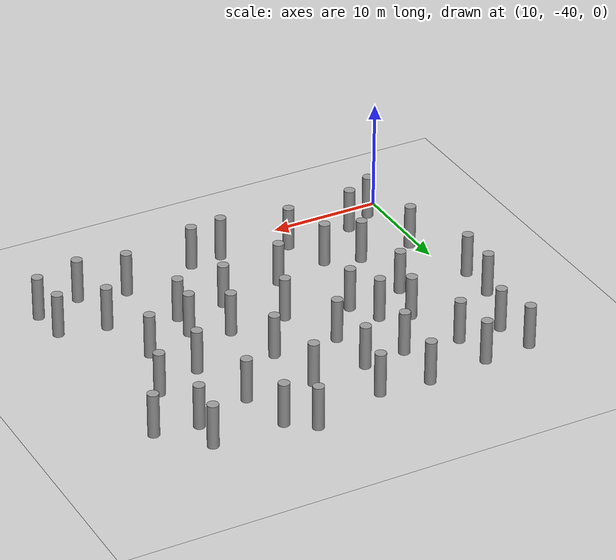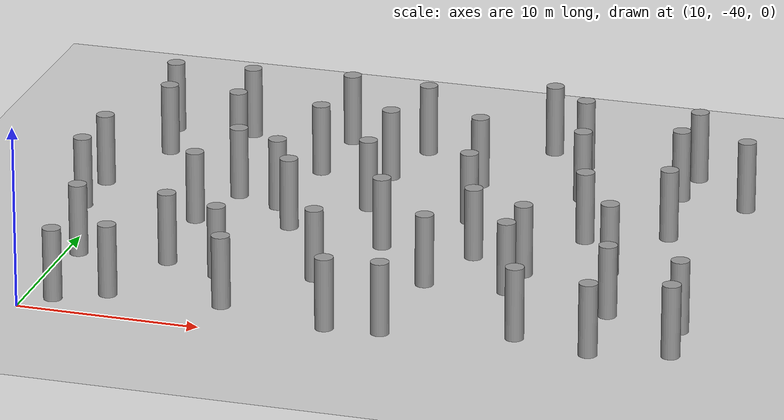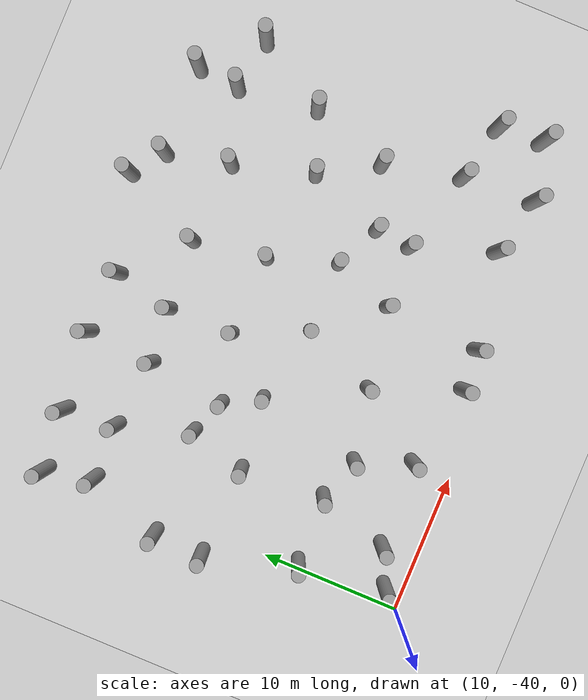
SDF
<sdf version="1.5">
 <world name="circle">
  <model name="ground">
   <static>1</static>
   <link name="link">
    <collision name="collision">
     <geometry><plane><normal>0 0 1</normal><size>100 100</size></plane></geometry>
     <surface><friction><ode><mu>100</mu><mu2>50</mu2></ode></friction></surface>
    </collision>
    <visual name="visual">
     <cast_shadows>0</cast_shadows>
     <geometry><plane><normal>0 0 1</normal><size>100 100</size></plane></geometry>
     <material>
      <script><uri>file://media/materials/scripts/gazebo.material</uri><name>Gazebo/Grey</name></script>
     </material>
    </visual>
    <velocity_decay><linear>0</linear><angular>0</angular></velocity_decay>
   </link>
  </model>
  <model name="unit_cylinder_0">
   <pose>11.4704873806 -38.4705015737 2 3e-06 4e-06 -0</pose>
   <static>1</static>
   <self_collide>1</self_collide>
   <link name="link">
    <inertial>
     <mass>1</mass>
     <inertia><ixx>0.145833</ixx><ixy>0</ixy><ixz>0</ixz><iyy>0.145833</iyy><iyz>0</iyz><izz>0.125</izz></inertia>
    </inertial>
    <collision name="collision">
     <geometry><cylinder><radius>0.5</radius><length>4</length></cylinder></geometry>
    </collision>
    <visual name="visual">
     <geometry><cylinder><radius>0.5</radius><length>4</length></cylinder></geometry>
     <material>
      <script><name>Gazebo/Grey</name><uri>file://media/materials/scripts/gazebo.material</uri></script>
     </material>
    </visual>
    <collision name="cyl_collision">
     <geometry><cylinder><radius>0.5</radius><length>4</length></cylinder></geometry>
    </collision>
    <sensor name="my_contact" type="contact">
     <contact><collision>cyl_collision</collision></contact>
     <update_rate>5</update_rate>
    </sensor>
   </link>
  </model>
  <model name="unit_cylinder_1">
   <pose>10.7220706982 -32.2368732227 2 3e-06 4e-06 -0</pose>
   <static>1</static>
   <self_collide>1</self_collide>
   <link name="link">
    <inertial>
     <mass>1</mass>
     <inertia><ixx>0.145833</ixx><ixy>0</ixy><ixz>0</ixz><iyy>0.145833</iyy><iyz>0</iyz><izz>0.125</izz></inertia>
    </inertial>
    <collision name="collision">
     <geometry><cylinder><radius>0.5</radius><length>4</length></cylinder></geometry>
    </collision>
    <visual name="visual">
     <geometry><cylinder><radius>0.5</radius><length>4</length></cylinder></geometry>
     <material>
      <script><name>Gazebo/Grey</name><uri>file://media/materials/scripts/gazebo.material</uri></script>
     </material>
    </visual>
    <collision name="cyl_collision">
     <geometry><cylinder><radius>0.5</radius><length>4</length></cylinder></geometry>
    </collision>
    <sensor name="my_contact" type="contact">
     <contact><collision>cyl_collision</collision></contact>
     <update_rate>5</update_rate>
    </sensor>
   </link>
  </model>
  <model name="unit_cylinder_2">
   <pose>8.72058208879 -25.7659753687 2 3e-06 4e-06 -0</pose>
   <static>1</static>
   <self_collide>1</self_collide>
   <link name="link">
    <inertial>
     <mass>1</mass>
     <inertia><ixx>0.145833</ixx><ixy>0</ixy><ixz>0</ixz><iyy>0.145833</iyy><iyz>0</iyz><izz>0.125</izz></inertia>
    </inertial>
    <collision name="collision">
     <geometry><cylinder><radius>0.5</radius><length>4</length></cylinder></geometry>
    </collision>
    <visual name="visual">
     <geometry><cylinder><radius>0.5</radius><length>4</length></cylinder></geometry>
     <material>
      <script><name>Gazebo/Grey</name><uri>file://media/materials/scripts/gazebo.material</uri></script>
     </material>
    </visual>
    <collision name="cyl_collision">
     <geometry><cylinder><radius>0.5</radius><length>4</length></cylinder></geometry>
    </collision>
    <sensor name="my_contact" type="contact">
     <contact><collision>cyl_collision</collision></contact>
     <update_rate>5</update_rate>
    </sensor>
   </link>
  </model>
  <model name="unit_cylinder_3">
   <pose>8.7979311131 -22.1893180289 2 3e-06 4e-06 -0</pose>
   <static>1</static>
   <self_collide>1</self_collide>
   <link name="link">
    <inertial>
     <mass>1</mass>
     <inertia><ixx>0.145833</ixx><ixy>0</ixy><ixz>0</ixz><iyy>0.145833</iyy><iyz>0</iyz><izz>0.125</izz></inertia>
    </inertial>
    <collision name="collision">
     <geometry><cylinder><radius>0.5</radius><length>4</length></cylinder></geometry>
    </collision>
    <visual name="visual">
     <geometry><cylinder><radius>0.5</radius><length>4</length></cylinder></geometry>
     <material>
      <script><name>Gazebo/Grey</name><uri>file://media/materials/scripts/gazebo.material</uri></script>
     </material>
    </visual>
    <collision name="cyl_collision">
     <geometry><cylinder><radius>0.5</radius><length>4</length></cylinder></geometry>
    </collision>
    <sensor name="my_contact" type="contact">
     <contact><collision>cyl_collision</collision></contact>
     <update_rate>5</update_rate>
    </sensor>
   </link>
  </model>
  <model name="unit_cylinder_4">
   <pose>10.7291669379 -16.8295722674 2 3e-06 4e-06 -0</pose>
   <static>1</static>
   <self_collide>1</self_collide>
   <link name="link">
    <inertial>
     <mass>1</mass>
     <inertia><ixx>0.145833</ixx><ixy>0</ixy><ixz>0</ixz><iyy>0.145833</iyy><iyz>0</iyz><izz>0.125</izz></inertia>
    </inertial>
    <collision name="collision">
     <geometry><cylinder><radius>0.5</radius><length>4</length></cylinder></geometry>
    </collision>
    <visual name="visual">
     <geometry><cylinder><radius>0.5</radius><length>4</length></cylinder></geometry>
     <material>
      <script><name>Gazebo/Grey</name><uri>file://media/materials/scripts/gazebo.material</uri></script>
     </material>
    </visual>
    <collision name="cyl_collision">
     <geometry><cylinder><radius>0.5</radius><length>4</length></cylinder></geometry>
    </collision>
    <sensor name="my_contact" type="contact">
     <contact><collision>cyl_collision</collision></contact>
     <update_rate>5</update_rate>
    </sensor>
   </link>
  </model>
  <model name="unit_cylinder_5">
   <pose>9.95934190549 -13.4133714786 2 3e-06 4e-06 -0</pose>
   <static>1</static>
   <self_collide>1</self_collide>
   <link name="link">
    <inertial>
     <mass>1</mass>
     <inertia><ixx>0.145833</ixx><ixy>0</ixy><ixz>0</ixz><iyy>0.145833</iyy><iyz>0</iyz><izz>0.125</izz></inertia>
    </inertial>
    <collision name="collision">
     <geometry><cylinder><radius>0.5</radius><length>4</length></cylinder></geometry>
    </collision>
    <visual name="visual">
     <geometry><cylinder><radius>0.5</radius><length>4</length></cylinder></geometry>
     <material>
      <script><name>Gazebo/Grey</name><uri>file://media/materials/scripts/gazebo.material</uri></script>
     </material>
    </visual>
    <collision name="cyl_collision">
     <geometry><cylinder><radius>0.5</radius><length>4</length></cylinder></geometry>
    </collision>
    <sensor name="my_contact" type="contact">
     <contact><collision>cyl_collision</collision></contact>
     <update_rate>5</update_rate>
    </sensor>
   </link>
  </model>
  <model name="unit_cylinder_15">
   <pose>14.0691763741 -37.1683287253 2 3e-06 4e-06 -0</pose>
   <static>1</static>
   <self_collide>1</self_collide>
   <link name="link">
    <inertial>
     <mass>1</mass>
     <inertia><ixx>0.145833</ixx><ixy>0</ixy><ixz>0</ixz><iyy>0.145833</iyy><iyz>0</iyz><izz>0.125</izz></inertia>
    </inertial>
    <collision name="collision">
     <geometry><cylinder><radius>0.5</radius><length>4</length></cylinder></geometry>
    </collision>
    <visual name="visual">
     <geometry><cylinder><radius>0.5</radius><length>4</length></cylinder></geometry>
     <material>
      <script><name>Gazebo/Grey</name><uri>file://media/materials/scripts/gazebo.material</uri></script>
     </material>
    </visual>
    <collision name="cyl_collision">
     <geometry><cylinder><radius>0.5</radius><length>4</length></cylinder></geometry>
    </collision>
    <sensor name="my_contact" type="contact">
     <contact><collision>cyl_collision</collision></contact>
     <update_rate>5</update_rate>
    </sensor>
   </link>
  </model>
  <model name="unit_cylinder_16">
   <pose>15.6718557421 -32.0796657784 2 3e-06 4e-06 -0</pose>
   <static>1</static>
   <self_collide>1</self_collide>
   <link name="link">
    <inertial>
     <mass>1</mass>
     <inertia><ixx>0.145833</ixx><ixy>0</ixy><ixz>0</ixz><iyy>0.145833</iyy><iyz>0</iyz><izz>0.125</izz></inertia>
    </inertial>
    <collision name="collision">
     <geometry><cylinder><radius>0.5</radius><length>4</length></cylinder></geometry>
    </collision>
    <visual name="visual">
     <geometry><cylinder><radius>0.5</radius><length>4</length></cylinder></geometry>
     <material>
      <script><name>Gazebo/Grey</name><uri>file://media/materials/scripts/gazebo.material</uri></script>
     </material>
    </visual>
    <collision name="cyl_collision">
     <geometry><cylinder><radius>0.5</radius><length>4</length></cylinder></geometry>
    </collision>
    <sensor name="my_contact" type="contact">
     <contact><collision>cyl_collision</collision></contact>
     <update_rate>5</update_rate>
    </sensor>
   </link>
  </model>
  <model name="unit_cylinder_17">
   <pose>15.2381734508 -26.0447782265 2 3e-06 4e-06 -0</pose>
   <static>1</static>
   <self_collide>1</self_collide>
   <link name="link">
    <inertial>
     <mass>1</mass>
     <inertia><ixx>0.145833</ixx><ixy>0</ixy><ixz>0</ixz><iyy>0.145833</iyy><iyz>0</iyz><izz>0.125</izz></inertia>
    </inertial>
    <collision name="collision">
     <geometry><cylinder><radius>0.5</radius><length>4</length></cylinder></geometry>
    </collision>
    <visual name="visual">
     <geometry><cylinder><radius>0.5</radius><length>4</length></cylinder></geometry>
     <material>
      <script><name>Gazebo/Grey</name><uri>file://media/materials/scripts/gazebo.material</uri></script>
     </material>
    </visual>
    <collision name="cyl_collision">
     <geometry><cylinder><radius>0.5</radius><length>4</length></cylinder></geometry>
    </collision>
    <sensor name="my_contact" type="contact">
     <contact><collision>cyl_collision</collision></contact>
     <update_rate>5</update_rate>
    </sensor>
   </link>
  </model>
  <model name="unit_cylinder_18">
   <pose>16.4323542205 -21.9812832431 2 3e-06 4e-06 -0</pose>
   <static>1</static>
   <self_collide>1</self_collide>
   <link name="link">
    <inertial>
     <mass>1</mass>
     <inertia><ixx>0.145833</ixx><ixy>0</ixy><ixz>0</ixz><iyy>0.145833</iyy><iyz>0</iyz><izz>0.125</izz></inertia>
    </inertial>
    <collision name="collision">
     <geometry><cylinder><radius>0.5</radius><length>4</length></cylinder></geometry>
    </collision>
    <visual name="visual">
     <geometry><cylinder><radius>0.5</radius><length>4</length></cylinder></geometry>
     <material>
      <script><name>Gazebo/Grey</name><uri>file://media/materials/scripts/gazebo.material</uri></script>
     </material>
    </visual>
    <collision name="cyl_collision">
     <geometry><cylinder><radius>0.5</radius><length>4</length></cylinder></geometry>
    </collision>
    <sensor name="my_contact" type="contact">
     <contact><collision>cyl_collision</collision></contact>
     <update_rate>5</update_rate>
    </sensor>
   </link>
  </model>
  <model name="unit_cylinder_19">
   <pose>14.7287866924 -16.8152338444 2 3e-06 4e-06 -0</pose>
   <static>1</static>
   <self_collide>1</self_collide>
   <link name="link">
    <inertial>
     <mass>1</mass>
     <inertia><ixx>0.145833</ixx><ixy>0</ixy><ixz>0</ixz><iyy>0.145833</iyy><iyz>0</iyz><izz>0.125</izz></inertia>
    </inertial>
    <collision name="collision">
     <geometry><cylinder><radius>0.5</radius><length>4</length></cylinder></geometry>
    </collision>
    <visual name="visual">
     <geometry><cylinder><radius>0.5</radius><length>4</length></cylinder></geometry>
     <material>
      <script><name>Gazebo/Grey</name><uri>file://media/materials/scripts/gazebo.material</uri></script>
     </material>
    </visual>
    <collision name="cyl_collision">
     <geometry><cylinder><radius>0.5</radius><length>4</length></cylinder></geometry>
    </collision>
    <sensor name="my_contact" type="contact">
     <contact><collision>cyl_collision</collision></contact>
     <update_rate>5</update_rate>
    </sensor>
   </link>
  </model>
  <model name="unit_cylinder_20">
   <pose>14.3871150903 -13.0582520196 2 3e-06 4e-06 -0</pose>
   <static>1</static>
   <self_collide>1</self_collide>
   <link name="link">
    <inertial>
     <mass>1</mass>
     <inertia><ixx>0.145833</ixx><ixy>0</ixy><ixz>0</ixz><iyy>0.145833</iyy><iyz>0</iyz><izz>0.125</izz></inertia>
    </inertial>
    <collision name="collision">
     <geometry><cylinder><radius>0.5</radius><length>4</length></cylinder></geometry>
    </collision>
    <visual name="visual">
     <geometry><cylinder><radius>0.5</radius><length>4</length></cylinder></geometry>
     <material>
      <script><name>Gazebo/Grey</name><uri>file://media/materials/scripts/gazebo.material</uri></script>
     </material>
    </visual>
    <collision name="cyl_collision">
     <geometry><cylinder><radius>0.5</radius><length>4</length></cylinder></geometry>
    </collision>
    <sensor name="my_contact" type="contact">
     <contact><collision>cyl_collision</collision></contact>
     <update_rate>5</update_rate>
    </sensor>
   </link>
  </model>
  <model name="unit_cylinder_30">
   <pose>20.2625665168 -36.9477858693 2 3e-06 4e-06 -0</pose>
   <static>1</static>
   <self_collide>1</self_collide>
   <link name="link">
    <inertial>
     <mass>1</mass>
     <inertia><ixx>0.145833</ixx><ixy>0</ixy><ixz>0</ixz><iyy>0.145833</iyy><iyz>0</iyz><izz>0.125</izz></inertia>
    </inertial>
    <collision name="collision">
     <geometry><cylinder><radius>0.5</radius><length>4</length></cylinder></geometry>
    </collision>
    <visual name="visual">
     <geometry><cylinder><radius>0.5</radius><length>4</length></cylinder></geometry>
     <material>
      <script><name>Gazebo/Grey</name><uri>file://media/materials/scripts/gazebo.material</uri></script>
     </material>
    </visual>
    <collision name="cyl_collision">
     <geometry><cylinder><radius>0.5</radius><length>4</length></cylinder></geometry>
    </collision>
    <sensor name="my_contact" type="contact">
     <contact><collision>cyl_collision</collision></contact>
     <update_rate>5</update_rate>
    </sensor>
   </link>
  </model>
  <model name="unit_cylinder_31">
   <pose>18.7741582791 -33.1090990883 2 3e-06 4e-06 -0</pose>
   <static>1</static>
   <self_collide>1</self_collide>
   <link name="link">
    <inertial>
     <mass>1</mass>
     <inertia><ixx>0.145833</ixx><ixy>0</ixy><ixz>0</ixz><iyy>0.145833</iyy><iyz>0</iyz><izz>0.125</izz></inertia>
    </inertial>
    <collision name="collision">
     <geometry><cylinder><radius>0.5</radius><length>4</length></cylinder></geometry>
    </collision>
    <visual name="visual">
     <geometry><cylinder><radius>0.5</radius><length>4</length></cylinder></geometry>
     <material>
      <script><name>Gazebo/Grey</name><uri>file://media/materials/scripts/gazebo.material</uri></script>
     </material>
    </visual>
    <collision name="cyl_collision">
     <geometry><cylinder><radius>0.5</radius><length>4</length></cylinder></geometry>
    </collision>
    <sensor name="my_contact" type="contact">
     <contact><collision>cyl_collision</collision></contact>
     <update_rate>5</update_rate>
    </sensor>
   </link>
  </model>
  <model name="unit_cylinder_32">
   <pose>20.4051474884 -25.552153799 2 3e-06 4e-06 -0</pose>
   <static>1</static>
   <self_collide>1</self_collide>
   <link name="link">
    <inertial>
     <mass>1</mass>
     <inertia><ixx>0.145833</ixx><ixy>0</ixy><ixz>0</ixz><iyy>0.145833</iyy><iyz>0</iyz><izz>0.125</izz></inertia>
    </inertial>
    <collision name="collision">
     <geometry><cylinder><radius>0.5</radius><length>4</length></cylinder></geometry>
    </collision>
    <visual name="visual">
     <geometry><cylinder><radius>0.5</radius><length>4</length></cylinder></geometry>
     <material>
      <script><name>Gazebo/Grey</name><uri>file://media/materials/scripts/gazebo.material</uri></script>
     </material>
    </visual>
    <collision name="cyl_collision">
     <geometry><cylinder><radius>0.5</radius><length>4</length></cylinder></geometry>
    </collision>
    <sensor name="my_contact" type="contact">
     <contact><collision>cyl_collision</collision></contact>
     <update_rate>5</update_rate>
    </sensor>
   </link>
  </model>
  <model name="unit_cylinder_33">
   <pose>18.9590954091 -22.9848063941 2 3e-06 4e-06 -0</pose>
   <static>1</static>
   <self_collide>1</self_collide>
   <link name="link">
    <inertial>
     <mass>1</mass>
     <inertia><ixx>0.145833</ixx><ixy>0</ixy><ixz>0</ixz><iyy>0.145833</iyy><iyz>0</iyz><izz>0.125</izz></inertia>
    </inertial>
    <collision name="collision">
     <geometry><cylinder><radius>0.5</radius><length>4</length></cylinder></geometry>
    </collision>
    <visual name="visual">
     <geometry><cylinder><radius>0.5</radius><length>4</length></cylinder></geometry>
     <material>
      <script><name>Gazebo/Grey</name><uri>file://media/materials/scripts/gazebo.material</uri></script>
     </material>
    </visual>
    <collision name="cyl_collision">
     <geometry><cylinder><radius>0.5</radius><length>4</length></cylinder></geometry>
    </collision>
    <sensor name="my_contact" type="contact">
     <contact><collision>cyl_collision</collision></contact>
     <update_rate>5</update_rate>
    </sensor>
   </link>
  </model>
  <model name="unit_cylinder_34">
   <pose>19.7175174615 -17.4032977497 2 3e-06 4e-06 -0</pose>
   <static>1</static>
   <self_collide>1</self_collide>
   <link name="link">
    <inertial>
     <mass>1</mass>
     <inertia><ixx>0.145833</ixx><ixy>0</ixy><ixz>0</ixz><iyy>0.145833</iyy><iyz>0</iyz><izz>0.125</izz></inertia>
    </inertial>
    <collision name="collision">
     <geometry><cylinder><radius>0.5</radius><length>4</length></cylinder></geometry>
    </collision>
    <visual name="visual">
     <geometry><cylinder><radius>0.5</radius><length>4</length></cylinder></geometry>
     <material>
      <script><name>Gazebo/Grey</name><uri>file://media/materials/scripts/gazebo.material</uri></script>
     </material>
    </visual>
    <collision name="cyl_collision">
     <geometry><cylinder><radius>0.5</radius><length>4</length></cylinder></geometry>
    </collision>
    <sensor name="my_contact" type="contact">
     <contact><collision>cyl_collision</collision></contact>
     <update_rate>5</update_rate>
    </sensor>
   </link>
  </model>
  <model name="unit_cylinder_35">
   <pose>20.0365971421 -12.5051086005 2 3e-06 4e-06 -0</pose>
   <static>1</static>
   <self_collide>1</self_collide>
   <link name="link">
    <inertial>
     <mass>1</mass>
     <inertia><ixx>0.145833</ixx><ixy>0</ixy><ixz>0</ixz><iyy>0.145833</iyy><iyz>0</iyz><izz>0.125</izz></inertia>
    </inertial>
    <collision name="collision">
     <geometry><cylinder><radius>0.5</radius><length>4</length></cylinder></geometry>
    </collision>
    <visual name="visual">
     <geometry><cylinder><radius>0.5</radius><length>4</length></cylinder></geometry>
     <material>
      <script><name>Gazebo/Grey</name><uri>file://media/materials/scripts/gazebo.material</uri></script>
     </material>
    </visual>
    <collision name="cyl_collision">
     <geometry><cylinder><radius>0.5</radius><length>4</length></cylinder></geometry>
    </collision>
    <sensor name="my_contact" type="contact">
     <contact><collision>cyl_collision</collision></contact>
     <update_rate>5</update_rate>
    </sensor>
   </link>
  </model>
  <model name="unit_cylinder_45">
   <pose>26.2974700898 -38.2208713183 2 3e-06 4e-06 -0</pose>
   <static>1</static>
   <self_collide>1</self_collide>
   <link name="link">
    <inertial>
     <mass>1</mass>
     <inertia><ixx>0.145833</ixx><ixy>0</ixy><ixz>0</ixz><iyy>0.145833</iyy><iyz>0</iyz><izz>0.125</izz></inertia>
    </inertial>
    <collision name="collision">
     <geometry><cylinder><radius>0.5</radius><length>4</length></cylinder></geometry>
    </collision>
    <visual name="visual">
     <geometry><cylinder><radius>0.5</radius><length>4</length></cylinder></geometry>
     <material>
      <script><name>Gazebo/Grey</name><uri>file://media/materials/scripts/gazebo.material</uri></script>
     </material>
    </visual>
    <collision name="cyl_collision">
     <geometry><cylinder><radius>0.5</radius><length>4</length></cylinder></geometry>
    </collision>
    <sensor name="my_contact" type="contact">
     <contact><collision>cyl_collision</collision></contact>
     <update_rate>5</update_rate>
    </sensor>
   </link>
  </model>
  <model name="unit_cylinder_46">
   <pose>23.8472554709 -32.0549970517 2 3e-06 4e-06 -0</pose>
   <static>1</static>
   <self_collide>1</self_collide>
   <link name="link">
    <inertial>
     <mass>1</mass>
     <inertia><ixx>0.145833</ixx><ixy>0</ixy><ixz>0</ixz><iyy>0.145833</iyy><iyz>0</iyz><izz>0.125</izz></inertia>
    </inertial>
    <collision name="collision">
     <geometry><cylinder><radius>0.5</radius><length>4</length></cylinder></geometry>
    </collision>
    <visual name="visual">
     <geometry><cylinder><radius>0.5</radius><length>4</length></cylinder></geometry>
     <material>
      <script><name>Gazebo/Grey</name><uri>file://media/materials/scripts/gazebo.material</uri></script>
     </material>
    </visual>
    <collision name="cyl_collision">
     <geometry><cylinder><radius>0.5</radius><length>4</length></cylinder></geometry>
    </collision>
    <sensor name="my_contact" type="contact">
     <contact><collision>cyl_collision</collision></contact>
     <update_rate>5</update_rate>
    </sensor>
   </link>
  </model>
  <model name="unit_cylinder_47">
   <pose>26.0045871152 -26.7910768543 2 3e-06 4e-06 -0</pose>
   <static>1</static>
   <self_collide>1</self_collide>
   <link name="link">
    <inertial>
     <mass>1</mass>
     <inertia><ixx>0.145833</ixx><ixy>0</ixy><ixz>0</ixz><iyy>0.145833</iyy><iyz>0</iyz><izz>0.125</izz></inertia>
    </inertial>
    <collision name="collision">
     <geometry><cylinder><radius>0.5</radius><length>4</length></cylinder></geometry>
    </collision>
    <visual name="visual">
     <geometry><cylinder><radius>0.5</radius><length>4</length></cylinder></geometry>
     <material>
      <script><name>Gazebo/Grey</name><uri>file://media/materials/scripts/gazebo.material</uri></script>
     </material>
    </visual>
    <collision name="cyl_collision">
     <geometry><cylinder><radius>0.5</radius><length>4</length></cylinder></geometry>
    </collision>
    <sensor name="my_contact" type="contact">
     <contact><collision>cyl_collision</collision></contact>
     <update_rate>5</update_rate>
    </sensor>
   </link>
  </model>
  <model name="unit_cylinder_48">
   <pose>23.73704644 -21.7522974582 2 3e-06 4e-06 -0</pose>
   <static>1</static>
   <self_collide>1</self_collide>
   <link name="link">
    <inertial>
     <mass>1</mass>
     <inertia><ixx>0.145833</ixx><ixy>0</ixy><ixz>0</ixz><iyy>0.145833</iyy><iyz>0</iyz><izz>0.125</izz></inertia>
    </inertial>
    <collision name="collision">
     <geometry><cylinder><radius>0.5</radius><length>4</length></cylinder></geometry>
    </collision>
    <visual name="visual">
     <geometry><cylinder><radius>0.5</radius><length>4</length></cylinder></geometry>
     <material>
      <script><name>Gazebo/Grey</name><uri>file://media/materials/scripts/gazebo.material</uri></script>
     </material>
    </visual>
    <collision name="cyl_collision">
     <geometry><cylinder><radius>0.5</radius><length>4</length></cylinder></geometry>
    </collision>
    <sensor name="my_contact" type="contact">
     <contact><collision>cyl_collision</collision></contact>
     <update_rate>5</update_rate>
    </sensor>
   </link>
  </model>
  <model name="unit_cylinder_49">
   <pose>23.6325895576 -17.0517152151 2 3e-06 4e-06 -0</pose>
   <static>1</static>
   <self_collide>1</self_collide>
   <link name="link">
    <inertial>
     <mass>1</mass>
     <inertia><ixx>0.145833</ixx><ixy>0</ixy><ixz>0</ixz><iyy>0.145833</iyy><iyz>0</iyz><izz>0.125</izz></inertia>
    </inertial>
    <collision name="collision">
     <geometry><cylinder><radius>0.5</radius><length>4</length></cylinder></geometry>
    </collision>
    <visual name="visual">
     <geometry><cylinder><radius>0.5</radius><length>4</length></cylinder></geometry>
     <material>
      <script><name>Gazebo/Grey</name><uri>file://media/materials/scripts/gazebo.material</uri></script>
     </material>
    </visual>
    <collision name="cyl_collision">
     <geometry><cylinder><radius>0.5</radius><length>4</length></cylinder></geometry>
    </collision>
    <sensor name="my_contact" type="contact">
     <contact><collision>cyl_collision</collision></contact>
     <update_rate>5</update_rate>
    </sensor>
   </link>
  </model>
  <model name="unit_cylinder_50">
   <pose>24.5707084861 -12.860743815 2 3e-06 4e-06 -0</pose>
   <static>1</static>
   <self_collide>1</self_collide>
   <link name="link">
    <inertial>
     <mass>1</mass>
     <inertia><ixx>0.145833</ixx><ixy>0</ixy><ixz>0</ixz><iyy>0.145833</iyy><iyz>0</iyz><izz>0.125</izz></inertia>
    </inertial>
    <collision name="collision">
     <geometry><cylinder><radius>0.5</radius><length>4</length></cylinder></geometry>
    </collision>
    <visual name="visual">
     <geometry><cylinder><radius>0.5</radius><length>4</length></cylinder></geometry>
     <material>
      <script><name>Gazebo/Grey</name><uri>file://media/materials/scripts/gazebo.material</uri></script>
     </material>
    </visual>
    <collision name="cyl_collision">
     <geometry><cylinder><radius>0.5</radius><length>4</length></cylinder></geometry>
    </collision>
    <sensor name="my_contact" type="contact">
     <contact><collision>cyl_collision</collision></contact>
     <update_rate>5</update_rate>
    </sensor>
   </link>
  </model>
  <model name="unit_cylinder_60">
   <pose>29.2415852697 -38.0016726965 2 3e-06 4e-06 -0</pose>
   <static>1</static>
   <self_collide>1</self_collide>
   <link name="link">
    <inertial>
     <mass>1</mass>
     <inertia><ixx>0.145833</ixx><ixy>0</ixy><ixz>0</ixz><iyy>0.145833</iyy><iyz>0</iyz><izz>0.125</izz></inertia>
    </inertial>
    <collision name="collision">
     <geometry><cylinder><radius>0.5</radius><length>4</length></cylinder></geometry>
    </collision>
    <visual name="visual">
     <geometry><cylinder><radius>0.5</radius><length>4</length></cylinder></geometry>
     <material>
      <script><name>Gazebo/Grey</name><uri>file://media/materials/scripts/gazebo.material</uri></script>
     </material>
    </visual>
    <collision name="cyl_collision">
     <geometry><cylinder><radius>0.5</radius><length>4</length></cylinder></geometry>
    </collision>
    <sensor name="my_contact" type="contact">
     <contact><collision>cyl_collision</collision></contact>
     <update_rate>5</update_rate>
    </sensor>
   </link>
  </model>
  <model name="unit_cylinder_61">
   <pose>29.6401074056 -31.1188521884 2 3e-06 4e-06 -0</pose>
   <static>1</static>
   <self_collide>1</self_collide>
   <link name="link">
    <inertial>
     <mass>1</mass>
     <inertia><ixx>0.145833</ixx><ixy>0</ixy><ixz>0</ixz><iyy>0.145833</iyy><iyz>0</iyz><izz>0.125</izz></inertia>
    </inertial>
    <collision name="collision">
     <geometry><cylinder><radius>0.5</radius><length>4</length></cylinder></geometry>
    </collision>
    <visual name="visual">
     <geometry><cylinder><radius>0.5</radius><length>4</length></cylinder></geometry>
     <material>
      <script><name>Gazebo/Grey</name><uri>file://media/materials/scripts/gazebo.material</uri></script>
     </material>
    </visual>
    <collision name="cyl_collision">
     <geometry><cylinder><radius>0.5</radius><length>4</length></cylinder></geometry>
    </collision>
    <sensor name="my_contact" type="contact">
     <contact><collision>cyl_collision</collision></contact>
     <update_rate>5</update_rate>
    </sensor>
   </link>
  </model>
  <model name="unit_cylinder_62">
   <pose>31.1166179648 -26.8167341529 2 3e-06 4e-06 -0</pose>
   <static>1</static>
   <self_collide>1</self_collide>
   <link name="link">
    <inertial>
     <mass>1</mass>
     <inertia><ixx>0.145833</ixx><ixy>0</ixy><ixz>0</ixz><iyy>0.145833</iyy><iyz>0</iyz><izz>0.125</izz></inertia>
    </inertial>
    <collision name="collision">
     <geometry><cylinder><radius>0.5</radius><length>4</length></cylinder></geometry>
    </collision>
    <visual name="visual">
     <geometry><cylinder><radius>0.5</radius><length>4</length></cylinder></geometry>
     <material>
      <script><name>Gazebo/Grey</name><uri>file://media/materials/scripts/gazebo.material</uri></script>
     </material>
    </visual>
    <collision name="cyl_collision">
     <geometry><cylinder><radius>0.5</radius><length>4</length></cylinder></geometry>
    </collision>
    <sensor name="my_contact" type="contact">
     <contact><collision>cyl_collision</collision></contact>
     <update_rate>5</update_rate>
    </sensor>
   </link>
  </model>
  <model name="unit_cylinder_63">
   <pose>29.5169700314 -22.0121749861 2 3e-06 4e-06 -0</pose>
   <static>1</static>
   <self_collide>1</self_collide>
   <link name="link">
    <inertial>
     <mass>1</mass>
     <inertia><ixx>0.145833</ixx><ixy>0</ixy><ixz>0</ixz><iyy>0.145833</iyy><iyz>0</iyz><izz>0.125</izz></inertia>
    </inertial>
    <collision name="collision">
     <geometry><cylinder><radius>0.5</radius><length>4</length></cylinder></geometry>
    </collision>
    <visual name="visual">
     <geometry><cylinder><radius>0.5</radius><length>4</length></cylinder></geometry>
     <material>
      <script><name>Gazebo/Grey</name><uri>file://media/materials/scripts/gazebo.material</uri></script>
     </material>
    </visual>
    <collision name="cyl_collision">
     <geometry><cylinder><radius>0.5</radius><length>4</length></cylinder></geometry>
    </collision>
    <sensor name="my_contact" type="contact">
     <contact><collision>cyl_collision</collision></contact>
     <update_rate>5</update_rate>
    </sensor>
   </link>
  </model>
  <model name="unit_cylinder_64">
   <pose>28.6497563185 -16.7589166792 2 3e-06 4e-06 -0</pose>
   <static>1</static>
   <self_collide>1</self_collide>
   <link name="link">
    <inertial>
     <mass>1</mass>
     <inertia><ixx>0.145833</ixx><ixy>0</ixy><ixz>0</ixz><iyy>0.145833</iyy><iyz>0</iyz><izz>0.125</izz></inertia>
    </inertial>
    <collision name="collision">
     <geometry><cylinder><radius>0.5</radius><length>4</length></cylinder></geometry>
    </collision>
    <visual name="visual">
     <geometry><cylinder><radius>0.5</radius><length>4</length></cylinder></geometry>
     <material>
      <script><name>Gazebo/Grey</name><uri>file://media/materials/scripts/gazebo.material</uri></script>
     </material>
    </visual>
    <collision name="cyl_collision">
     <geometry><cylinder><radius>0.5</radius><length>4</length></cylinder></geometry>
    </collision>
    <sensor name="my_contact" type="contact">
     <contact><collision>cyl_collision</collision></contact>
     <update_rate>5</update_rate>
    </sensor>
   </link>
  </model>
  <model name="unit_cylinder_65">
   <pose>31.3390729529 -10.951318678 2 3e-06 4e-06 -0</pose>
   <static>1</static>
   <self_collide>1</self_collide>
   <link name="link">
    <inertial>
     <mass>1</mass>
     <inertia><ixx>0.145833</ixx><ixy>0</ixy><ixz>0</ixz><iyy>0.145833</iyy><iyz>0</iyz><izz>0.125</izz></inertia>
    </inertial>
    <collision name="collision">
     <geometry><cylinder><radius>0.5</radius><length>4</length></cylinder></geometry>
    </collision>
    <visual name="visual">
     <geometry><cylinder><radius>0.5</radius><length>4</length></cylinder></geometry>
     <material>
      <script><name>Gazebo/Grey</name><uri>file://media/materials/scripts/gazebo.material</uri></script>
     </material>
    </visual>
    <collision name="cyl_collision">
     <geometry><cylinder><radius>0.5</radius><length>4</length></cylinder></geometry>
    </collision>
    <sensor name="my_contact" type="contact">
     <contact><collision>cyl_collision</collision></contact>
     <update_rate>5</update_rate>
    </sensor>
   </link>
  </model>
  <model name="unit_cylinder_75">
   <pose>36.0992255862 -36.6765145843 2 3e-06 4e-06 -0</pose>
   <static>1</static>
   <self_collide>1</self_collide>
   <link name="link">
    <inertial>
     <mass>1</mass>
     <inertia><ixx>0.145833</ixx><ixy>0</ixy><ixz>0</ixz><iyy>0.145833</iyy><iyz>0</iyz><izz>0.125</izz></inertia>
    </inertial>
    <collision name="collision">
     <geometry><cylinder><radius>0.5</radius><length>4</length></cylinder></geometry>
    </collision>
    <visual name="visual">
     <geometry><cylinder><radius>0.5</radius><length>4</length></cylinder></geometry>
     <material>
      <script><name>Gazebo/Grey</name><uri>file://media/materials/scripts/gazebo.material</uri></script>
     </material>
    </visual>
    <collision name="cyl_collision">
     <geometry><cylinder><radius>0.5</radius><length>4</length></cylinder></geometry>
    </collision>
    <sensor name="my_contact" type="contact">
     <contact><collision>cyl_collision</collision></contact>
     <update_rate>5</update_rate>
    </sensor>
   </link>
  </model>
  <model name="unit_cylinder_76">
   <pose>34.0590561593 -30.9178429164 2 3e-06 4e-06 -0</pose>
   <static>1</static>
   <self_collide>1</self_collide>
   <link name="link">
    <inertial>
     <mass>1</mass>
     <inertia><ixx>0.145833</ixx><ixy>0</ixy><ixz>0</ixz><iyy>0.145833</iyy><iyz>0</iyz><izz>0.125</izz></inertia>
    </inertial>
    <collision name="collision">
     <geometry><cylinder><radius>0.5</radius><length>4</length></cylinder></geometry>
    </collision>
    <visual name="visual">
     <geometry><cylinder><radius>0.5</radius><length>4</length></cylinder></geometry>
     <material>
      <script><name>Gazebo/Grey</name><uri>file://media/materials/scripts/gazebo.material</uri></script>
     </material>
    </visual>
    <collision name="cyl_collision">
     <geometry><cylinder><radius>0.5</radius><length>4</length></cylinder></geometry>
    </collision>
    <sensor name="my_contact" type="contact">
     <contact><collision>cyl_collision</collision></contact>
     <update_rate>5</update_rate>
    </sensor>
   </link>
  </model>
  <model name="unit_cylinder_77">
   <pose>34.2836842407 -28.3499605698 2 3e-06 4e-06 -0</pose>
   <static>1</static>
   <self_collide>1</self_collide>
   <link name="link">
    <inertial>
     <mass>1</mass>
     <inertia><ixx>0.145833</ixx><ixy>0</ixy><ixz>0</ixz><iyy>0.145833</iyy><iyz>0</iyz><izz>0.125</izz></inertia>
    </inertial>
    <collision name="collision">
     <geometry><cylinder><radius>0.5</radius><length>4</length></cylinder></geometry>
    </collision>
    <visual name="visual">
     <geometry><cylinder><radius>0.5</radius><length>4</length></cylinder></geometry>
     <material>
      <script><name>Gazebo/Grey</name><uri>file://media/materials/scripts/gazebo.material</uri></script>
     </material>
    </visual>
    <collision name="cyl_collision">
     <geometry><cylinder><radius>0.5</radius><length>4</length></cylinder></geometry>
    </collision>
    <sensor name="my_contact" type="contact">
     <contact><collision>cyl_collision</collision></contact>
     <update_rate>5</update_rate>
    </sensor>
   </link>
  </model>
  <model name="unit_cylinder_78">
   <pose>36.2373574851 -22.9348293 2 3e-06 4e-06 -0</pose>
   <static>1</static>
   <self_collide>1</self_collide>
   <link name="link">
    <inertial>
     <mass>1</mass>
     <inertia><ixx>0.145833</ixx><ixy>0</ixy><ixz>0</ixz><iyy>0.145833</iyy><iyz>0</iyz><izz>0.125</izz></inertia>
    </inertial>
    <collision name="collision">
     <geometry><cylinder><radius>0.5</radius><length>4</length></cylinder></geometry>
    </collision>
    <visual name="visual">
     <geometry><cylinder><radius>0.5</radius><length>4</length></cylinder></geometry>
     <material>
      <script><name>Gazebo/Grey</name><uri>file://media/materials/scripts/gazebo.material</uri></script>
     </material>
    </visual>
    <collision name="cyl_collision">
     <geometry><cylinder><radius>0.5</radius><length>4</length></cylinder></geometry>
    </collision>
    <sensor name="my_contact" type="contact">
     <contact><collision>cyl_collision</collision></contact>
     <update_rate>5</update_rate>
    </sensor>
   </link>
  </model>
  <model name="unit_cylinder_79">
   <pose>34.5896468494 -17.2170484203 2 3e-06 4e-06 -0</pose>
   <static>1</static>
   <self_collide>1</self_collide>
   <link name="link">
    <inertial>
     <mass>1</mass>
     <inertia><ixx>0.145833</ixx><ixy>0</ixy><ixz>0</ixz><iyy>0.145833</iyy><iyz>0</iyz><izz>0.125</izz></inertia>
    </inertial>
    <collision name="collision">
     <geometry><cylinder><radius>0.5</radius><length>4</length></cylinder></geometry>
    </collision>
    <visual name="visual">
     <geometry><cylinder><radius>0.5</radius><length>4</length></cylinder></geometry>
     <material>
      <script><name>Gazebo/Grey</name><uri>file://media/materials/scripts/gazebo.material</uri></script>
     </material>
    </visual>
    <collision name="cyl_collision">
     <geometry><cylinder><radius>0.5</radius><length>4</length></cylinder></geometry>
    </collision>
    <sensor name="my_contact" type="contact">
     <contact><collision>cyl_collision</collision></contact>
     <update_rate>5</update_rate>
    </sensor>
   </link>
  </model>
  <model name="unit_cylinder_80">
   <pose>33.5641728857 -12.6586961475 2 3e-06 4e-06 -0</pose>
   <static>1</static>
   <self_collide>1</self_collide>
   <link name="link">
    <inertial>
     <mass>1</mass>
     <inertia><ixx>0.145833</ixx><ixy>0</ixy><ixz>0</ixz><iyy>0.145833</iyy><iyz>0</iyz><izz>0.125</izz></inertia>
    </inertial>
    <collision name="collision">
     <geometry><cylinder><radius>0.5</radius><length>4</length></cylinder></geometry>
    </collision>
    <visual name="visual">
     <geometry><cylinder><radius>0.5</radius><length>4</length></cylinder></geometry>
     <material>
      <script><name>Gazebo/Grey</name><uri>file://media/materials/scripts/gazebo.material</uri></script>
     </material>
    </visual>
    <collision name="cyl_collision">
     <geometry><cylinder><radius>0.5</radius><length>4</length></cylinder></geometry>
    </collision>
    <sensor name="my_contact" type="contact">
     <contact><collision>cyl_collision</collision></contact>
     <update_rate>5</update_rate>
    </sensor>
   </link>
  </model>
  <model name="unit_cylinder_90">
   <pose>40.2760044774 -37.6647074155 2 3e-06 4e-06 -0</pose>
   <static>1</static>
   <self_collide>1</self_collide>
   <link name="link">
    <inertial>
     <mass>1</mass>
     <inertia><ixx>0.145833</ixx><ixy>0</ixy><ixz>0</ixz><iyy>0.145833</iyy><iyz>0</iyz><izz>0.125</izz></inertia>
    </inertial>
    <collision name="collision">
     <geometry><cylinder><radius>0.5</radius><length>4</length></cylinder></geometry>
    </collision>
    <visual name="visual">
     <geometry><cylinder><radius>0.5</radius><length>4</length></cylinder></geometry>
     <material>
      <script><name>Gazebo/Grey</name><uri>file://media/materials/scripts/gazebo.material</uri></script>
     </material>
    </visual>
    <collision name="cyl_collision">
     <geometry><cylinder><radius>0.5</radius><length>4</length></cylinder></geometry>
    </collision>
    <sensor name="my_contact" type="contact">
     <contact><collision>cyl_collision</collision></contact>
     <update_rate>5</update_rate>
    </sensor>
   </link>
  </model>
  <model name="unit_cylinder_91">
   <pose>39.959576763 -32.4585241601 2 3e-06 4e-06 -0</pose>
   <static>1</static>
   <self_collide>1</self_collide>
   <link name="link">
    <inertial>
     <mass>1</mass>
     <inertia><ixx>0.145833</ixx><ixy>0</ixy><ixz>0</ixz><iyy>0.145833</iyy><iyz>0</iyz><izz>0.125</izz></inertia>
    </inertial>
    <collision name="collision">
     <geometry><cylinder><radius>0.5</radius><length>4</length></cylinder></geometry>
    </collision>
    <visual name="visual">
     <geometry><cylinder><radius>0.5</radius><length>4</length></cylinder></geometry>
     <material>
      <script><name>Gazebo/Grey</name><uri>file://media/materials/scripts/gazebo.material</uri></script>
     </material>
    </visual>
    <collision name="cyl_collision">
     <geometry><cylinder><radius>0.5</radius><length>4</length></cylinder></geometry>
    </collision>
    <sensor name="my_contact" type="contact">
     <contact><collision>cyl_collision</collision></contact>
     <update_rate>5</update_rate>
    </sensor>
   </link>
  </model>
  <model name="unit_cylinder_92">
   <pose>38.6284859282 -26.9191900183 2 3e-06 4e-06 -0</pose>
   <static>1</static>
   <self_collide>1</self_collide>
   <link name="link">
    <inertial>
     <mass>1</mass>
     <inertia><ixx>0.145833</ixx><ixy>0</ixy><ixz>0</ixz><iyy>0.145833</iyy><iyz>0</iyz><izz>0.125</izz></inertia>
    </inertial>
    <collision name="collision">
     <geometry><cylinder><radius>0.5</radius><length>4</length></cylinder></geometry>
    </collision>
    <visual name="visual">
     <geometry><cylinder><radius>0.5</radius><length>4</length></cylinder></geometry>
     <material>
      <script><name>Gazebo/Grey</name><uri>file://media/materials/scripts/gazebo.material</uri></script>
     </material>
    </visual>
    <collision name="cyl_collision">
     <geometry><cylinder><radius>0.5</radius><length>4</length></cylinder></geometry>
    </collision>
    <sensor name="my_contact" type="contact">
     <contact><collision>cyl_collision</collision></contact>
     <update_rate>5</update_rate>
    </sensor>
   </link>
  </model>
  <model name="unit_cylinder_93">
   <pose>40.4741315072 -21.3281425262 2 3e-06 4e-06 -0</pose>
   <static>1</static>
   <self_collide>1</self_collide>
   <link name="link">
    <inertial>
     <mass>1</mass>
     <inertia><ixx>0.145833</ixx><ixy>0</ixy><ixz>0</ixz><iyy>0.145833</iyy><iyz>0</iyz><izz>0.125</izz></inertia>
    </inertial>
    <collision name="collision">
     <geometry><cylinder><radius>0.5</radius><length>4</length></cylinder></geometry>
    </collision>
    <visual name="visual">
     <geometry><cylinder><radius>0.5</radius><length>4</length></cylinder></geometry>
     <material>
      <script><name>Gazebo/Grey</name><uri>file://media/materials/scripts/gazebo.material</uri></script>
     </material>
    </visual>
    <collision name="cyl_collision">
     <geometry><cylinder><radius>0.5</radius><length>4</length></cylinder></geometry>
    </collision>
    <sensor name="my_contact" type="contact">
     <contact><collision>cyl_collision</collision></contact>
     <update_rate>5</update_rate>
    </sensor>
   </link>
  </model>
  <model name="unit_cylinder_94">
   <pose>39.7247407245 -15.5796866038 2 3e-06 4e-06 -0</pose>
   <static>1</static>
   <self_collide>1</self_collide>
   <link name="link">
    <inertial>
     <mass>1</mass>
     <inertia><ixx>0.145833</ixx><ixy>0</ixy><ixz>0</ixz><iyy>0.145833</iyy><iyz>0</iyz><izz>0.125</izz></inertia>
    </inertial>
    <collision name="collision">
     <geometry><cylinder><radius>0.5</radius><length>4</length></cylinder></geometry>
    </collision>
    <visual name="visual">
     <geometry><cylinder><radius>0.5</radius><length>4</length></cylinder></geometry>
     <material>
      <script><name>Gazebo/Grey</name><uri>file://media/materials/scripts/gazebo.material</uri></script>
     </material>
    </visual>
    <collision name="cyl_collision">
     <geometry><cylinder><radius>0.5</radius><length>4</length></cylinder></geometry>
    </collision>
    <sensor name="my_contact" type="contact">
     <contact><collision>cyl_collision</collision></contact>
     <update_rate>5</update_rate>
    </sensor>
   </link>
  </model>
  <model name="unit_cylinder_95">
   <pose>40.005164703 -12.5711512398 2 3e-06 4e-06 -0</pose>
   <static>1</static>
   <self_collide>1</self_collide>
   <link name="link">
    <inertial>
     <mass>1</mass>
     <inertia><ixx>0.145833</ixx><ixy>0</ixy><ixz>0</ixz><iyy>0.145833</iyy><iyz>0</iyz><izz>0.125</izz></inertia>
    </inertial>
    <collision name="collision">
     <geometry><cylinder><radius>0.5</radius><length>4</length></cylinder></geometry>
    </collision>
    <visual name="visual">
     <geometry><cylinder><radius>0.5</radius><length>4</length></cylinder></geometry>
     <material>
      <script><name>Gazebo/Grey</name><uri>file://media/materials/scripts/gazebo.material</uri></script>
     </material>
    </visual>
    <collision name="cyl_collision">
     <geometry><cylinder><radius>0.5</radius><length>4</length></cylinder></geometry>
    </collision>
    <sensor name="my_contact" type="contact">
     <contact><collision>cyl_collision</collision></contact>
     <update_rate>5</update_rate>
    </sensor>
   </link>
  </model>
  <model name="unit_cylinder_105">
   <pose>44.4010651116 -36.6463256647 2 3e-06 4e-06 -0</pose>
   <static>1</static>
   <self_collide>1</self_collide>
   <link name="link">
    <inertial>
     <mass>1</mass>
     <inertia><ixx>0.145833</ixx><ixy>0</ixy><ixz>0</ixz><iyy>0.145833</iyy><iyz>0</iyz><izz>0.125</izz></inertia>
    </inertial>
    <collision name="collision">
     <geometry><cylinder><radius>0.5</radius><length>4</length></cylinder></geometry>
    </collision>
    <visual name="visual">
     <geometry><cylinder><radius>0.5</radius><length>4</length></cylinder></geometry>
     <material>
      <script><name>Gazebo/Grey</name><uri>file://media/materials/scripts/gazebo.material</uri></script>
     </material>
    </visual>
    <collision name="cyl_collision">
     <geometry><cylinder><radius>0.5</radius><length>4</length></cylinder></geometry>
    </collision>
    <sensor name="my_contact" type="contact">
     <contact><collision>cyl_collision</collision></contact>
     <update_rate>5</update_rate>
    </sensor>
   </link>
  </model>
  <model name="unit_cylinder_106">
   <pose>44.053985197 -33.3995571339 2 3e-06 4e-06 -0</pose>
   <static>1</static>
   <self_collide>1</self_collide>
   <link name="link">
    <inertial>
     <mass>1</mass>
     <inertia><ixx>0.145833</ixx><ixy>0</ixy><ixz>0</ixz><iyy>0.145833</iyy><iyz>0</iyz><izz>0.125</izz></inertia>
    </inertial>
    <collision name="collision">
     <geometry><cylinder><radius>0.5</radius><length>4</length></cylinder></geometry>
    </collision>
    <visual name="visual">
     <geometry><cylinder><radius>0.5</radius><length>4</length></cylinder></geometry>
     <material>
      <script><name>Gazebo/Grey</name><uri>file://media/materials/scripts/gazebo.material</uri></script>
     </material>
    </visual>
    <collision name="cyl_collision">
     <geometry><cylinder><radius>0.5</radius><length>4</length></cylinder></geometry>
    </collision>
    <sensor name="my_contact" type="contact">
     <contact><collision>cyl_collision</collision></contact>
     <update_rate>5</update_rate>
    </sensor>
   </link>
  </model>
  <model name="unit_cylinder_109">
   <pose>43.518883792 -16.1819573312 2 3e-06 4e-06 -0</pose>
   <static>1</static>
   <self_collide>1</self_collide>
   <link name="link">
    <inertial>
     <mass>1</mass>
     <inertia><ixx>0.145833</ixx><ixy>0</ixy><ixz>0</ixz><iyy>0.145833</iyy><iyz>0</iyz><izz>0.125</izz></inertia>
    </inertial>
    <collision name="collision">
     <geometry><cylinder><radius>0.5</radius><length>4</length></cylinder></geometry>
    </collision>
    <visual name="visual">
     <geometry><cylinder><radius>0.5</radius><length>4</length></cylinder></geometry>
     <material>
      <script><name>Gazebo/Grey</name><uri>file://media/materials/scripts/gazebo.material</uri></script>
     </material>
    </visual>
    <collision name="cyl_collision">
     <geometry><cylinder><radius>0.5</radius><length>4</length></cylinder></geometry>
    </collision>
    <sensor name="my_contact" type="contact">
     <contact><collision>cyl_collision</collision></contact>
     <update_rate>5</update_rate>
    </sensor>
   </link>
  </model>
 </world>
</sdf>
